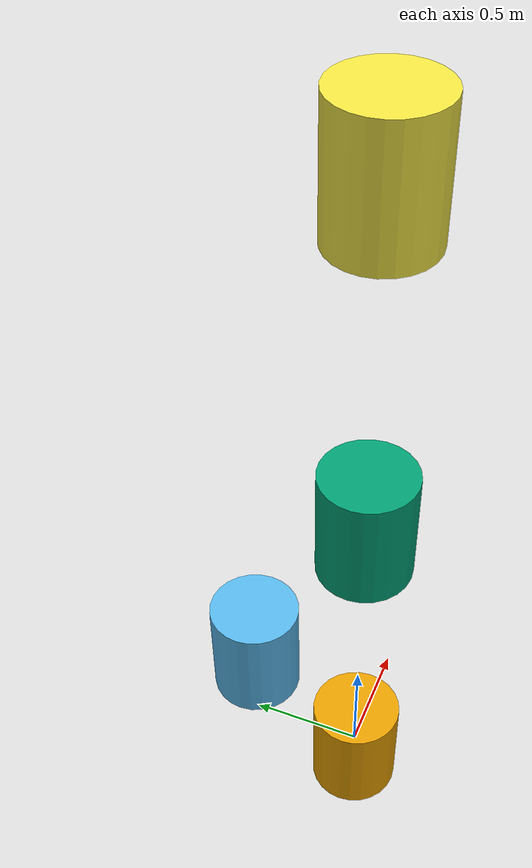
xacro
<?xml version="1.0"?>
<robot xmlns:xacro="http://www.ros.org/wiki/xacro" name="robot">

    <link
    name="base">
    <visual>
      <origin
        xyz="0 0 0"
        rpy="0 0 0" />
      <geometry>
         <cylinder radius="0.2" length="0.5"/>
      </geometry>
    </visual>
  </link>

  <link
    name="link1">
    <visual>
      <origin
        xyz="0 0.5 0"
        rpy="0 0 0" />
      <geometry>
        <cylinder radius="0.2" length="0.5"/>
      </geometry>
    </visual>
  </link>
  <joint
    name="joint1"
    type="revolute">
    <origin
      xyz="0 0 0.5"
      rpy="0 0 0" />
    <parent
      link="base" />
    <child
      link="link1" />
    <axis
      xyz="0 0 1" />
      <limit lower="-1" upper="1"
        effort="100" velocity="100"/>
  </joint>
  <link
    name="link2">
    <visual>
      <origin
        xyz="0 0 0"
        rpy="0 0 0" />
      <geometry>
        <cylinder radius="0.2" length="0.5"/>
      </geometry>
    </visual>
  </link>
  <joint
    name="joint2"
    type="revolute">
    <origin
      xyz="0 0 1"
      rpy="0 0 0" />
    <parent
      link="link1" />
    <child
      link="link2" />
    <axis
      xyz="0 0 1" />
    <limit lower="-1" upper="1"
        effort="100" velocity="100"/>
  </joint>
  <link
    name="link3">
    <visual>
      <origin
        xyz="0 0 0"
        rpy="0 0 0" />
      <geometry>
        <cylinder radius="0.2" length="0.5"/>
      </geometry>
    </visual>
  </link>
  <joint
    name="joint3"
    type="revolute">
    <origin
      xyz="0 0 1.5"
      rpy="0 0 0" />
    <parent
      link="link2" />
    <child
      link="link3" />
    <axis
      xyz="0 0 1" />
     <limit lower="-1" upper="1"
        effort="100" velocity="100"/>
  </joint>

    <ros2_control name="testControl" type="system">
          <hardware>
            <plugin>hardware_interface_wrappers/TransmissionWrapper</plugin>
            <param name="wrapped_interface">test_hardware_interface_wrappers/TestableJointSystem</param>
          </hardware>
         <joint name="joint1">
                <command_interface name="position"/>
                <command_interface name="velocity"/>
                <state_interface name="position"/>
                <state_interface name="velocity"/>
                <state_interface name="effort"/>
         </joint>
            <joint name="joint2">
                <command_interface name="position"/>
                <command_interface name="velocity"/>
                <state_interface name="position"/>
                <state_interface name="velocity"/>
                <state_interface name="effort"/>
            </joint>
          <joint name="joint3">
                <command_interface name="position"/>
                <command_interface name="velocity"/>
                <state_interface name="position"/>
                <state_interface name="velocity"/>
                <state_interface name="effort"/>
            </joint>
            <transmission name="transmission_scara">
                  <plugin>robee_transmission_interface/ScaraTransmission</plugin>
                  <actuator name="actuator2" role="actuator2">
                  </actuator>
                  <actuator name="actuator3" role="actuator3">
                  </actuator>
                  <joint name="joint2" role="joint2">
                    <offset>0.01236057350368102</offset>
                    <mechanical_reduction>251.3274122872</mechanical_reduction>
                  </joint>
                  <joint name="joint3" role="joint3">
                    <offset>0</offset>
                    <mechanical_reduction>1.0</mechanical_reduction>
                  </joint>
                  <param name="ppr1">4000</param>
                  <param name="ppr2">8000</param>
                  <param name="screw_reduction">250</param>
                </transmission>
                 <transmission name="transmission_joint1">
                  <plugin>robee_transmission_interface/BasicTransmission</plugin>
                  <joint name="joint1" role="joint1">
                    <mechanical_reduction>1.0</mechanical_reduction>
                    <offset>0</offset>
                  </joint>
                </transmission>
        </ros2_control>
</robot>
